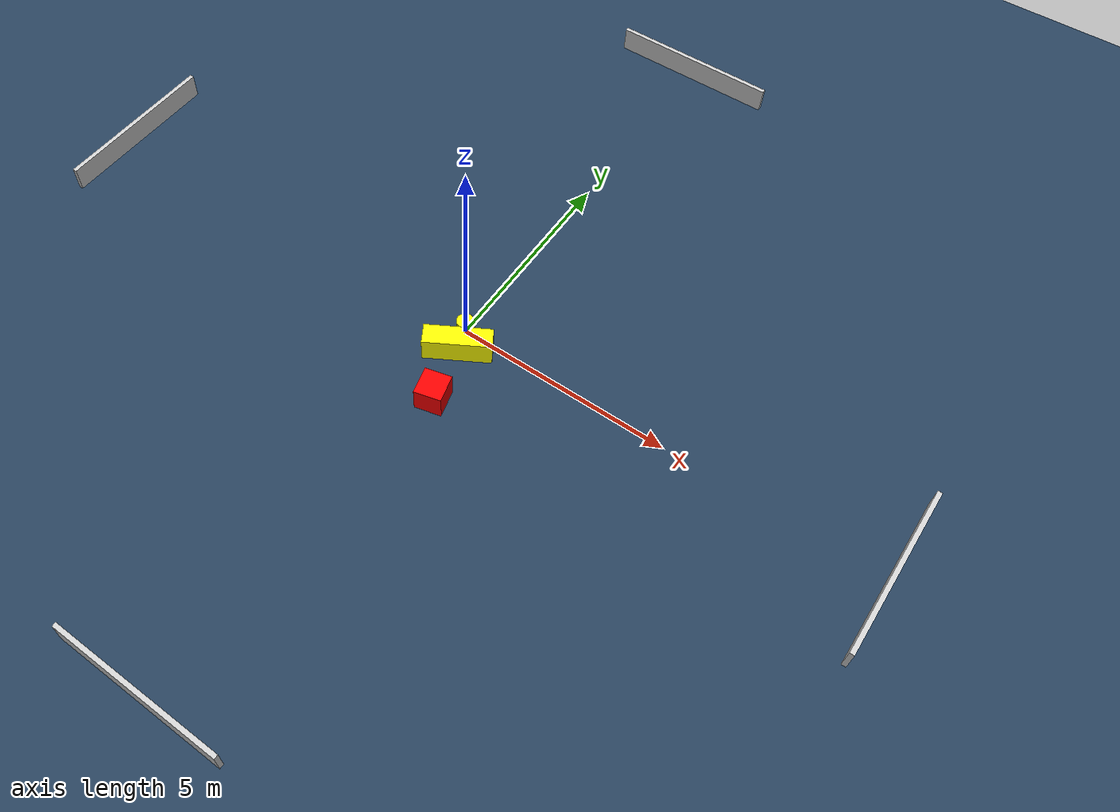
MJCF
<?xml version="1.0" ?>
<mujoco model="generated_environment">
  <option timestep="0.01" integrator="RK4" cone="elliptic"/>
  <default>
    <geom density="1"/>
  </default>
  <asset>
    <texture builtin="gradient" height="3072" name="skybox" rgb1="0.3 0.5 0.7" rgb2="0 0 0" type="skybox" width="512"/>
    <texture builtin="checker" height="300" name="groundplane" rgb1="0.2 0.3 0.4" rgb2="0.1 0.2 0.3" type="2d" width="300"/>
    <material name="groundplane" reflectance="0.2" texrepeat="5 5" texture="groundplane"/>
  </asset>
  <worldbody>
    <light dir="0 0 -1" directional="true" pos="0 0 1.5"/>
    <geom condim="3" friction="0.5 0.005 0.001" material="groundplane" name="floor" pos="0 0 0" size="0 0 0.05" type="plane"/>
    <body name="walls">
      <geom name="wall_1" condim="4" pos="-10.0 0.0 0.3" rgba="0.800000011920929 0.800000011920929 0.800000011920929 1.0" size="0.05 2.0 0.3" type="box"/>
      <geom name="wall_2" condim="4" pos="10.0 0.0 0.3" rgba="0.800000011920929 0.800000011920929 0.800000011920929 1.0" size="0.05 2.0 0.3" type="box"/>
      <geom name="wall_3" condim="4" pos="0.0 -10.0 0.3" rgba="0.800000011920929 0.800000011920929 0.800000011920929 1.0" size="2.0 0.05 0.3" type="box"/>
      <geom name="wall_4" condim="4" pos="0.0 10.0 0.3" rgba="0.800000011920929 0.800000011920929 0.800000011920929 1.0" size="2.0 0.05 0.3" type="box"/>
    </body>
    <body name="robot">
      <joint name="joint_x" type="slide" pos="0 0 0" axis="1 0 0"/>
      <joint name="joint_y" type="slide" pos="0 0 0" axis="0 1 0"/>
      <geom name="robot" type="cylinder" pos="0.0 0.0 0.2" size="0.2 0.2 0.0" mass="5.0" friction="1.0 0.005 0.0001" condim="4" rgba="1.0 1.0 0.0 1.0"/>
    </body>
    <body name="obstacle_1_movable">
      <geom name="obstacle_1_movable" condim="4" pos="0.17591388335240435 -0.5268203856092344 0.3" euler="0 0 30.474409846079354" friction="0.0 0.005 0.001" rgba="1.0 1.0 0.0 1.0" size="0.7617398936528044 0.23745651677976626 0.3" type="box" mass="0.1"/>
      <joint type="free"/>
    </body>
    <body name="obstacle_2_static">
      <geom name="obstacle_2_static" condim="4" pos="0.4830492001535858 -1.8223326467421281 0.3" euler="0 0 194.49900118826451" friction="0.0 0.005 0.001" rgba="1.0 0.0 0.0 1.0" size="0.3080536645063019 0.31965429348847263 0.3" type="box"/>
    </body>
  </worldbody>
  <actuator>
    <motor name="actuator_x" joint="joint_x" gear="1" ctrlrange="-1 1"/>
    <motor name="actuator_y" joint="joint_y" gear="1" ctrlrange="-1 1"/>
  </actuator>
</mujoco>
